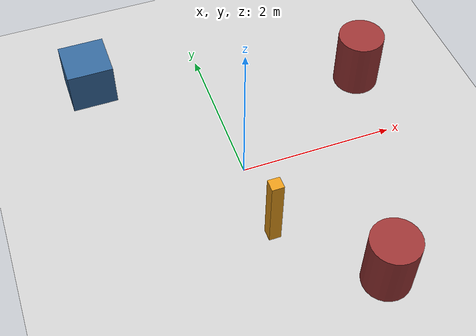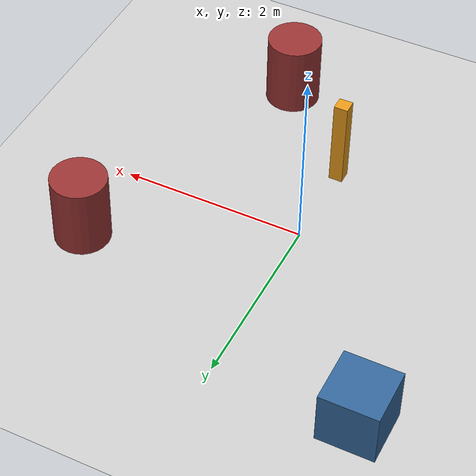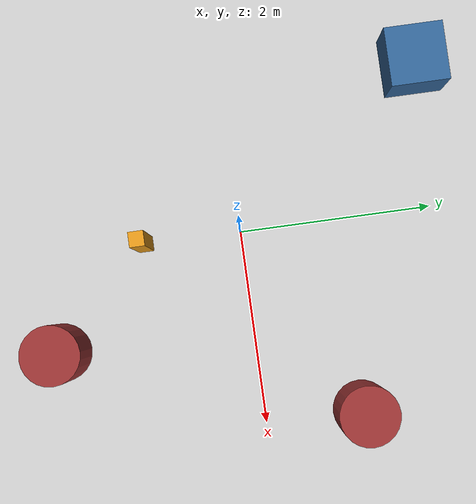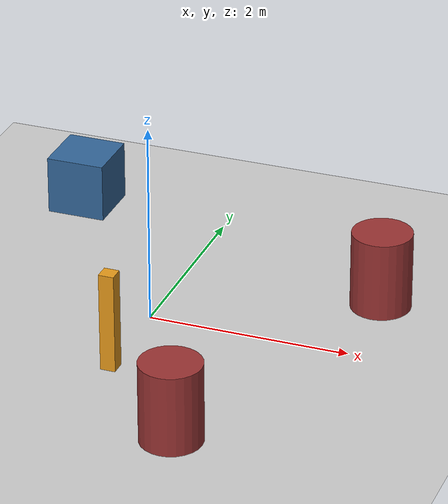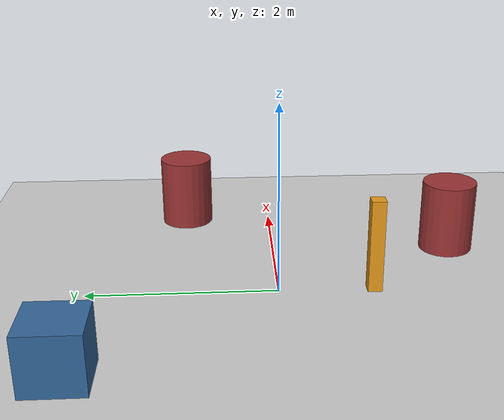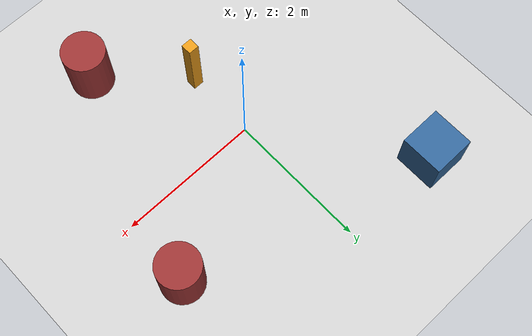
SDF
<?xml version="1.0" ?>
<sdf version="1.9">
  <world name="obstacle_world">

    <physics name="1ms" type="ignored">
      <max_step_size>0.001</max_step_size>
      <real_time_factor>1.0</real_time_factor>
    </physics>

    <plugin filename="gz-sim-physics-system" name="gz::sim::systems::Physics"></plugin>
    <plugin filename="gz-sim-user-commands-system" name="gz::sim::systems::UserCommands"></plugin>
    <plugin filename="gz-sim-scene-broadcaster-system" name="gz::sim::systems::SceneBroadcaster"></plugin>
    <plugin filename="gz-sim-contact-system" name="gz::sim::systems::Contact"></plugin>

    <light type="directional" name="sun">
      <cast_shadows>true</cast_shadows>
      <pose>0 0 10 0 0 0</pose>
      <diffuse>0.8 0.8 0.8 1</diffuse>
      <specular>0.2 0.2 0.2 1</specular>
      <direction>-0.5 0.1 -0.9</direction>
    </light>

    <!-- Ground -->
    <model name="ground_plane">
      <static>true</static>
      <link name="link">
        <collision name="collision">
          <geometry>
            <plane>
              <normal>0 0 1</normal>
              <size>20 20</size>
            </plane>
          </geometry>
        </collision>
        <visual name="visual">
          <geometry>
            <plane>
              <normal>0 0 1</normal>
              <size>20 20</size>
            </plane>
          </geometry>
          <material>
            <ambient>0.8 0.8 0.8 1</ambient>
            <diffuse>0.8 0.8 0.8 1</diffuse>
          </material>
        </visual>
      </link>
    </model>

    <!-- Fixed obstacle 1: cylinder -->
    <model name="obstacle_cylinder_1">
      <static>true</static>
      <pose>2 1 0.4 0 0 0</pose>
      <link name="link">
        <collision name="collision">
          <geometry><cylinder><radius>0.3</radius><length>0.8</length></cylinder></geometry>
        </collision>
        <visual name="visual">
          <geometry><cylinder><radius>0.3</radius><length>0.8</length></cylinder></geometry>
          <material><ambient>0.6 0.2 0.2 1</ambient><diffuse>0.6 0.2 0.2 1</diffuse></material>
        </visual>
      </link>
    </model>

    <!-- Fixed obstacle 2: box -->
    <model name="obstacle_box_1">
      <static>true</static>
      <pose>-1.5 2 0.3 0 0 0</pose>
      <link name="link">
        <collision name="collision">
          <geometry><box><size>0.6 0.6 0.6</size></box></geometry>
        </collision>
        <visual name="visual">
          <geometry><box><size>0.6 0.6 0.6</size></box></geometry>
          <material><ambient>0.2 0.4 0.6 1</ambient><diffuse>0.2 0.4 0.6 1</diffuse></material>
        </visual>
      </link>
    </model>

    <!-- Fixed obstacle 3: cylinder -->
    <model name="obstacle_cylinder_2">
      <static>true</static>
      <pose>1 -2 0.4 0 0 0</pose>
      <link name="link">
        <collision name="collision">
          <geometry><cylinder><radius>0.3</radius><length>0.8</length></cylinder></geometry>
        </collision>
        <visual name="visual">
          <geometry><cylinder><radius>0.3</radius><length>0.8</length></cylinder></geometry>
          <material><ambient>0.6 0.2 0.2 1</ambient><diffuse>0.6 0.2 0.2 1</diffuse></material>
        </visual>
      </link>
    </model>

    <!-- TOPPLE-ABLE OBJECT: tall thin box, NOT static, so it physically falls over on collision -->
    <model name="topple_object">
      <pose>0 -1 0.5 0 0 0</pose>
      <link name="link">
        <inertial>
          <mass>0.5</mass>
          <inertia>
            <ixx>0.05</ixx><iyy>0.05</iyy><izz>0.002</izz>
            <ixy>0</ixy><ixz>0</ixz><iyz>0</iyz>
          </inertia>
        </inertial>
        <collision name="collision">
          <geometry><box><size>0.15 0.15 1.0</size></box></geometry>
          <surface>
            <friction>
              <ode><mu>0.3</mu><mu2>0.3</mu2></ode>
            </friction>
          </surface>
        </collision>
        <visual name="visual">
          <geometry><box><size>0.15 0.15 1.0</size></box></geometry>
          <material><ambient>0.9 0.6 0.1 1</ambient><diffuse>0.9 0.6 0.1 1</diffuse></material>
        </visual>
      </link>
    </model>

  </world>
</sdf>
